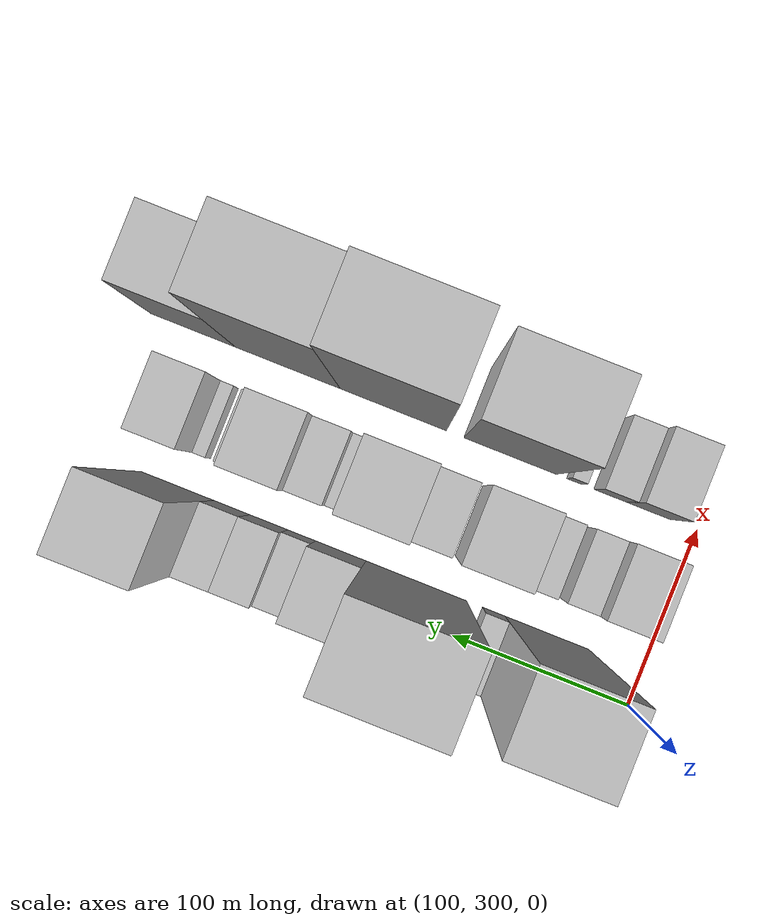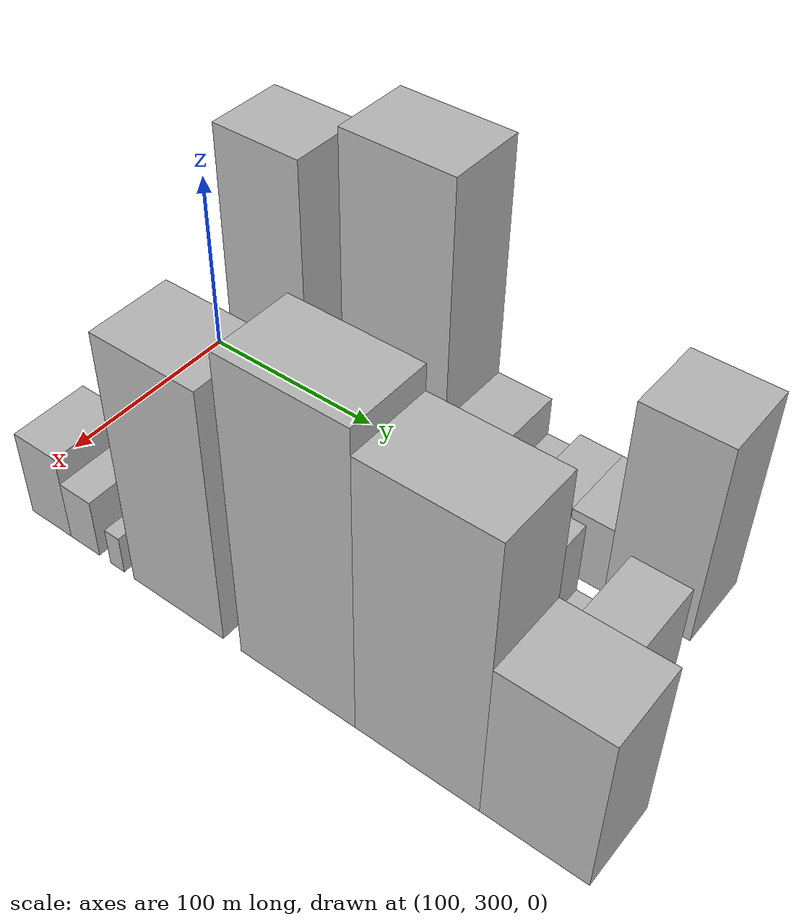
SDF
<sdf version="1.6">
 <world name="default">
  <model name="building_26">
   <static>1</static>
   <pose>100.0000 354.2889 0 0.000000 0.000000 0.000000</pose>
   <link name="link">
    <pose>0 0 75.00 0 0 0</pose>
    <collision name="collision"><geometry><box><size>40.0000 47.6782 150.0000</size></box></geometry></collision>
    <visual name="visual">
     <cast_shadows>0</cast_shadows>
     <geometry><box><size>40.0000 47.6782 150.0000</size></box></geometry>
     <material>
      <script>
       <uri>model://HANNAS_wall/materials/scripts</uri>
       <uri>model://HANNAS_wall/materials/textures</uri>
       <name>vrc/HANNAS_wall</name>
      </script>
     </material>
    </visual>
   </link>
  </model>
  <model name="building_27">
   <static>1</static>
   <pose>100.0000 384.5869 0 0.000000 0.000000 0.000000</pose>
   <link name="link">
    <pose>0 0 13.50 0 0 0</pose>
    <collision name="collision"><geometry><box><size>40.0000 12.9178 27.0000</size></box></geometry></collision>
    <visual name="visual">
     <cast_shadows>0</cast_shadows>
     <geometry><box><size>40.0000 12.9178 27.0000</size></box></geometry>
     <material>
      <script>
       <uri>model://HANNAS_wall/materials/scripts</uri>
       <uri>model://HANNAS_wall/materials/textures</uri>
       <name>vrc/HANNAS_wall</name>
      </script>
     </material>
    </visual>
   </link>
  </model>
  <model name="building_28">
   <static>1</static>
   <pose>100.0000 428.7757 0 0.000000 0.000000 0.000000</pose>
   <link name="link">
    <pose>0 0 87.00 0 0 0</pose>
    <collision name="collision"><geometry><box><size>40.0000 57.4597 174.0000</size></box></geometry></collision>
    <visual name="visual">
     <cast_shadows>0</cast_shadows>
     <geometry><box><size>40.0000 57.4597 174.0000</size></box></geometry>
     <material>
      <script>
       <uri>model://HANNAS_wall/materials/scripts</uri>
       <uri>model://HANNAS_wall/materials/textures</uri>
       <name>vrc/HANNAS_wall</name>
      </script>
     </material>
    </visual>
   </link>
  </model>
  <model name="building_29">
   <static>1</static>
   <pose>100.0000 471.7689 0 0.000000 0.000000 0.000000</pose>
   <link name="link">
    <pose>0 0 25.50 0 0 0</pose>
    <collision name="collision"><geometry><box><size>40.0000 28.5268 51.0000</size></box></geometry></collision>
    <visual name="visual">
     <cast_shadows>0</cast_shadows>
     <geometry><box><size>40.0000 28.5268 51.0000</size></box></geometry>
     <material>
      <script>
       <uri>model://HANNAS_wall/materials/scripts</uri>
       <uri>model://HANNAS_wall/materials/textures</uri>
       <name>vrc/HANNAS_wall</name>
      </script>
     </material>
    </visual>
   </link>
  </model>
  <model name="building_30">
   <static>1</static>
   <pose>100.0000 494.0220 0 0.000000 0.000000 0.000000</pose>
   <link name="link">
    <pose>0 0 15.00 0 0 0</pose>
    <collision name="collision"><geometry><box><size>40.0000 15.9793 30.0000</size></box></geometry></collision>
    <visual name="visual">
     <cast_shadows>0</cast_shadows>
     <geometry><box><size>40.0000 15.9793 30.0000</size></box></geometry>
     <material>
      <script>
       <uri>model://HANNAS_wall/materials/scripts</uri>
       <uri>model://HANNAS_wall/materials/textures</uri>
       <name>vrc/HANNAS_wall</name>
      </script>
     </material>
    </visual>
   </link>
  </model>
  <model name="building_31">
   <static>1</static>
   <pose>100.0000 512.8624 0 0.000000 0.000000 0.000000</pose>
   <link name="link">
    <pose>0 0 19.50 0 0 0</pose>
    <collision name="collision"><geometry><box><size>40.0000 21.7016 39.0000</size></box></geometry></collision>
    <visual name="visual">
     <cast_shadows>0</cast_shadows>
     <geometry><box><size>40.0000 21.7016 39.0000</size></box></geometry>
     <material>
      <script>
       <uri>model://HANNAS_wall/materials/scripts</uri>
       <uri>model://HANNAS_wall/materials/textures</uri>
       <name>vrc/HANNAS_wall</name>
      </script>
     </material>
    </visual>
   </link>
  </model>
  <model name="building_32">
   <static>1</static>
   <pose>100.0000 533.9631 0 0.000000 0.000000 0.000000</pose>
   <link name="link">
    <pose>0 0 19.50 0 0 0</pose>
    <collision name="collision"><geometry><box><size>40.0000 20.4997 39.0000</size></box></geometry></collision>
    <visual name="visual">
     <cast_shadows>0</cast_shadows>
     <geometry><box><size>40.0000 20.4997 39.0000</size></box></geometry>
     <material>
      <script>
       <uri>model://HANNAS_wall/materials/scripts</uri>
       <uri>model://HANNAS_wall/materials/textures</uri>
       <name>vrc/HANNAS_wall</name>
      </script>
     </material>
    </visual>
   </link>
  </model>
  <model name="building_33">
   <static>1</static>
   <pose>100.0000 565.1274 0 0.000000 0.000000 0.000000</pose>
   <link name="link">
    <pose>0 0 55.50 0 0 0</pose>
    <collision name="collision"><geometry><box><size>40.0000 41.8290 111.0000</size></box></geometry></collision>
    <visual name="visual">
     <cast_shadows>0</cast_shadows>
     <geometry><box><size>40.0000 41.8290 111.0000</size></box></geometry>
     <material>
      <script>
       <uri>model://HANNAS_wall/materials/scripts</uri>
       <uri>model://HANNAS_wall/materials/textures</uri>
       <name>vrc/HANNAS_wall</name>
      </script>
     </material>
    </visual>
   </link>
  </model>
  <model name="building_62">
   <static>1</static>
   <pose>160.0000 323.5536 0 0.000000 0.000000 0.000000</pose>
   <link name="link">
    <pose>0 0 25.50 0 0 0</pose>
    <collision name="collision"><geometry><box><size>40.0000 28.8681 51.0000</size></box></geometry></collision>
    <visual name="visual">
     <cast_shadows>0</cast_shadows>
     <geometry><box><size>40.0000 28.8681 51.0000</size></box></geometry>
     <material>
      <script>
       <uri>model://HANNAS_wall/materials/scripts</uri>
       <uri>model://HANNAS_wall/materials/textures</uri>
       <name>vrc/HANNAS_wall</name>
      </script>
     </material>
    </visual>
   </link>
  </model>
  <model name="building_63">
   <static>1</static>
   <pose>160.0000 346.7336 0 0.000000 0.000000 0.000000</pose>
   <link name="link">
    <pose>0 0 16.50 0 0 0</pose>
    <collision name="collision"><geometry><box><size>40.0000 17.4918 33.0000</size></box></geometry></collision>
    <visual name="visual">
     <cast_shadows>0</cast_shadows>
     <geometry><box><size>40.0000 17.4918 33.0000</size></box></geometry>
     <material>
      <script>
       <uri>model://HANNAS_wall/materials/scripts</uri>
       <uri>model://HANNAS_wall/materials/textures</uri>
       <name>vrc/HANNAS_wall</name>
      </script>
     </material>
    </visual>
   </link>
  </model>
  <model name="building_64">
   <static>1</static>
   <pose>160.0000 369.3459 0 0.000000 0.000000 0.000000</pose>
   <link name="link">
    <pose>0 0 16.50 0 0 0</pose>
    <collision name="collision"><geometry><box><size>40.0000 17.7330 33.0000</size></box></geometry></collision>
    <visual name="visual">
     <cast_shadows>0</cast_shadows>
     <geometry><box><size>40.0000 17.7330 33.0000</size></box></geometry>
     <material>
      <script>
       <uri>model://HANNAS_wall/materials/scripts</uri>
       <uri>model://HANNAS_wall/materials/textures</uri>
       <name>vrc/HANNAS_wall</name>
      </script>
     </material>
    </visual>
   </link>
  </model>
  <model name="building_65">
   <static>1</static>
   <pose>160.0000 396.4069 0 0.000000 0.000000 0.000000</pose>
   <link name="link">
    <pose>0 0 36.00 0 0 0</pose>
    <collision name="collision"><geometry><box><size>40.0000 36.3889 72.0000</size></box></geometry></collision>
    <visual name="visual">
     <cast_shadows>0</cast_shadows>
     <geometry><box><size>40.0000 36.3889 72.0000</size></box></geometry>
     <material>
      <script>
       <uri>model://HANNAS_wall/materials/scripts</uri>
       <uri>model://HANNAS_wall/materials/textures</uri>
       <name>vrc/HANNAS_wall</name>
      </script>
     </material>
    </visual>
   </link>
  </model>
  <model name="building_66">
   <static>1</static>
   <pose>160.0000 428.9386 0 0.000000 0.000000 0.000000</pose>
   <link name="link">
    <pose>0 0 19.50 0 0 0</pose>
    <collision name="collision"><geometry><box><size>40.0000 22.6745 39.0000</size></box></geometry></collision>
    <visual name="visual">
     <cast_shadows>0</cast_shadows>
     <geometry><box><size>40.0000 22.6745 39.0000</size></box></geometry>
     <material>
      <script>
       <uri>model://HANNAS_wall/materials/scripts</uri>
       <uri>model://HANNAS_wall/materials/textures</uri>
       <name>vrc/HANNAS_wall</name>
      </script>
     </material>
    </visual>
   </link>
  </model>
  <model name="building_67">
   <static>1</static>
   <pose>160.0000 459.4966 0 0.000000 0.000000 0.000000</pose>
   <link name="link">
    <pose>0 0 37.50 0 0 0</pose>
    <collision name="collision"><geometry><box><size>40.0000 38.4415 75.0000</size></box></geometry></collision>
    <visual name="visual">
     <cast_shadows>0</cast_shadows>
     <geometry><box><size>40.0000 38.4415 75.0000</size></box></geometry>
     <material>
      <script>
       <uri>model://HANNAS_wall/materials/scripts</uri>
       <uri>model://HANNAS_wall/materials/textures</uri>
       <name>vrc/HANNAS_wall</name>
      </script>
     </material>
    </visual>
   </link>
  </model>
  <model name="building_68">
   <static>1</static>
   <pose>160.0000 483.1227 0 0.000000 0.000000 0.000000</pose>
   <link name="link">
    <pose>0 0 10.50 0 0 0</pose>
    <collision name="collision"><geometry><box><size>40.0000 8.8106 21.0000</size></box></geometry></collision>
    <visual name="visual">
     <cast_shadows>0</cast_shadows>
     <geometry><box><size>40.0000 8.8106 21.0000</size></box></geometry>
     <material>
      <script>
       <uri>model://HANNAS_wall/materials/scripts</uri>
       <uri>model://HANNAS_wall/materials/textures</uri>
       <name>vrc/HANNAS_wall</name>
      </script>
     </material>
    </visual>
   </link>
  </model>
  <model name="building_69">
   <static>1</static>
   <pose>160.0000 497.9858 0 0.000000 0.000000 0.000000</pose>
   <link name="link">
    <pose>0 0 18.00 0 0 0</pose>
    <collision name="collision"><geometry><box><size>40.0000 20.9155 36.0000</size></box></geometry></collision>
    <visual name="visual">
     <cast_shadows>0</cast_shadows>
     <geometry><box><size>40.0000 20.9155 36.0000</size></box></geometry>
     <material>
      <script>
       <uri>model://HANNAS_wall/materials/scripts</uri>
       <uri>model://HANNAS_wall/materials/textures</uri>
       <name>vrc/HANNAS_wall</name>
      </script>
     </material>
    </visual>
   </link>
  </model>
  <model name="building_70">
   <static>1</static>
   <pose>160.0000 524.6616 0 0.000000 0.000000 0.000000</pose>
   <link name="link">
    <pose>0 0 28.50 0 0 0</pose>
    <collision name="collision"><geometry><box><size>40.0000 32.4362 57.0000</size></box></geometry></collision>
    <visual name="visual">
     <cast_shadows>0</cast_shadows>
     <geometry><box><size>40.0000 32.4362 57.0000</size></box></geometry>
     <material>
      <script>
       <uri>model://HANNAS_wall/materials/scripts</uri>
       <uri>model://HANNAS_wall/materials/textures</uri>
       <name>vrc/HANNAS_wall</name>
      </script>
     </material>
    </visual>
   </link>
  </model>
  <model name="building_71">
   <static>1</static>
   <pose>160.0000 545.1387 0 0.000000 0.000000 0.000000</pose>
   <link name="link">
    <pose>0 0 9.00 0 0 0</pose>
    <collision name="collision"><geometry><box><size>40.0000 8.5180 18.0000</size></box></geometry></collision>
    <visual name="visual">
     <cast_shadows>0</cast_shadows>
     <geometry><box><size>40.0000 8.5180 18.0000</size></box></geometry>
     <material>
      <script>
       <uri>model://HANNAS_wall/materials/scripts</uri>
       <uri>model://HANNAS_wall/materials/textures</uri>
       <name>vrc/HANNAS_wall</name>
      </script>
     </material>
    </visual>
   </link>
  </model>
  <model name="building_72">
   <static>1</static>
   <pose>160.0000 558.0651 0 0.000000 0.000000 0.000000</pose>
   <link name="link">
    <pose>0 0 7.50 0 0 0</pose>
    <collision name="collision"><geometry><box><size>40.0000 7.3349 15.0000</size></box></geometry></collision>
    <visual name="visual">
     <cast_shadows>0</cast_shadows>
     <geometry><box><size>40.0000 7.3349 15.0000</size></box></geometry>
     <material>
      <script>
       <uri>model://HANNAS_wall/materials/scripts</uri>
       <uri>model://HANNAS_wall/materials/textures</uri>
       <name>vrc/HANNAS_wall</name>
      </script>
     </material>
    </visual>
   </link>
  </model>
  <model name="building_73">
   <static>1</static>
   <pose>160.0000 575.5154 0 0.000000 0.000000 0.000000</pose>
   <link name="link">
    <pose>0 0 27.00 0 0 0</pose>
    <collision name="collision"><geometry><box><size>40.0000 27.5657 54.0000</size></box></geometry></collision>
    <visual name="visual">
     <cast_shadows>0</cast_shadows>
     <geometry><box><size>40.0000 27.5657 54.0000</size></box></geometry>
     <material>
      <script>
       <uri>model://HANNAS_wall/materials/scripts</uri>
       <uri>model://HANNAS_wall/materials/textures</uri>
       <name>vrc/HANNAS_wall</name>
      </script>
     </material>
    </visual>
   </link>
  </model>
  <model name="building_102">
   <static>1</static>
   <pose>220.0000 328.1563 0 0.000000 0.000000 0.000000</pose>
   <link name="link">
    <pose>0 0 24.00 0 0 0</pose>
    <collision name="collision"><geometry><box><size>40.0000 25.3433 48.0000</size></box></geometry></collision>
    <visual name="visual">
     <cast_shadows>0</cast_shadows>
     <geometry><box><size>40.0000 25.3433 48.0000</size></box></geometry>
     <material>
      <script>
       <uri>model://HANNAS_wall/materials/scripts</uri>
       <uri>model://HANNAS_wall/materials/textures</uri>
       <name>vrc/HANNAS_wall</name>
      </script>
     </material>
    </visual>
   </link>
  </model>
  <model name="building_103">
   <static>1</static>
   <pose>220.0000 349.9554 0 0.000000 0.000000 0.000000</pose>
   <link name="link">
    <pose>0 0 16.50 0 0 0</pose>
    <collision name="collision"><geometry><box><size>40.0000 18.2548 33.0000</size></box></geometry></collision>
    <visual name="visual">
     <cast_shadows>0</cast_shadows>
     <geometry><box><size>40.0000 18.2548 33.0000</size></box></geometry>
     <material>
      <script>
       <uri>model://HANNAS_wall/materials/scripts</uri>
       <uri>model://HANNAS_wall/materials/textures</uri>
       <name>vrc/HANNAS_wall</name>
      </script>
     </material>
    </visual>
   </link>
  </model>
  <model name="building_104">
   <static>1</static>
   <pose>220.0000 370.3349 0 0.000000 0.000000 0.000000</pose>
   <link name="link">
    <pose>0 0 10.50 0 0 0</pose>
    <collision name="collision"><geometry><box><size>40.0000 8.5043 21.0000</size></box></geometry></collision>
    <visual name="visual">
     <cast_shadows>0</cast_shadows>
     <geometry><box><size>40.0000 8.5043 21.0000</size></box></geometry>
     <material>
      <script>
       <uri>model://HANNAS_wall/materials/scripts</uri>
       <uri>model://HANNAS_wall/materials/textures</uri>
       <name>vrc/HANNAS_wall</name>
      </script>
     </material>
    </visual>
   </link>
  </model>
  <model name="building_105">
   <static>1</static>
   <pose>220.0000 406.9719 0 0.000000 0.000000 0.000000</pose>
   <link name="link">
    <pose>0 0 69.00 0 0 0</pose>
    <collision name="collision"><geometry><box><size>40.0000 52.7697 138.0000</size></box></geometry></collision>
    <visual name="visual">
     <cast_shadows>0</cast_shadows>
     <geometry><box><size>40.0000 52.7697 138.0000</size></box></geometry>
     <material>
      <script>
       <uri>model://HANNAS_wall/materials/scripts</uri>
       <uri>model://HANNAS_wall/materials/textures</uri>
       <name>vrc/HANNAS_wall</name>
      </script>
     </material>
    </visual>
   </link>
  </model>
  <model name="building_106">
   <static>1</static>
   <pose>220.0000 473.6798 0 0.000000 0.000000 0.000000</pose>
   <link name="link">
    <pose>0 0 81.00 0 0 0</pose>
    <collision name="collision"><geometry><box><size>40.0000 60.6459 162.0000</size></box></geometry></collision>
    <visual name="visual">
     <cast_shadows>0</cast_shadows>
     <geometry><box><size>40.0000 60.6459 162.0000</size></box></geometry>
     <material>
      <script>
       <uri>model://HANNAS_wall/materials/scripts</uri>
       <uri>model://HANNAS_wall/materials/textures</uri>
       <name>vrc/HANNAS_wall</name>
      </script>
     </material>
    </visual>
   </link>
  </model>
  <model name="building_107">
   <static>1</static>
   <pose>220.0000 533.9775 0 0.000000 0.000000 0.000000</pose>
   <link name="link">
    <pose>0 0 75.00 0 0 0</pose>
    <collision name="collision"><geometry><box><size>40.0000 59.9495 150.0000</size></box></geometry></collision>
    <visual name="visual">
     <cast_shadows>0</cast_shadows>
     <geometry><box><size>40.0000 59.9495 150.0000</size></box></geometry>
     <material>
      <script>
       <uri>model://HANNAS_wall/materials/scripts</uri>
       <uri>model://HANNAS_wall/materials/textures</uri>
       <name>vrc/HANNAS_wall</name>
      </script>
     </material>
    </visual>
   </link>
  </model>
  <model name="building_108">
   <static>1</static>
   <pose>220.0000 588.2146 0 0.000000 0.000000 0.000000</pose>
   <link name="link">
    <pose>0 0 43.50 0 0 0</pose>
    <collision name="collision"><geometry><box><size>40.0000 48.5248 87.0000</size></box></geometry></collision>
    <visual name="visual">
     <cast_shadows>0</cast_shadows>
     <geometry><box><size>40.0000 48.5248 87.0000</size></box></geometry>
     <material>
      <script>
       <uri>model://HANNAS_wall/materials/scripts</uri>
       <uri>model://HANNAS_wall/materials/textures</uri>
       <name>vrc/HANNAS_wall</name>
      </script>
     </material>
    </visual>
   </link>
  </model>
 </world>
</sdf>
